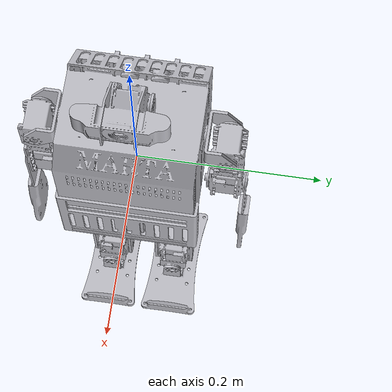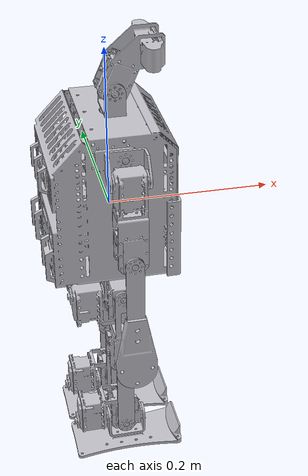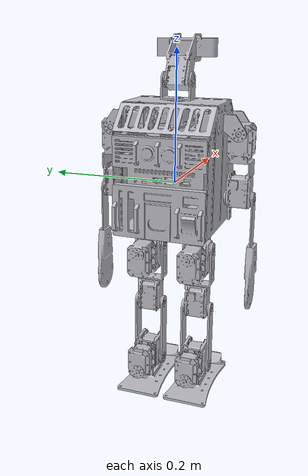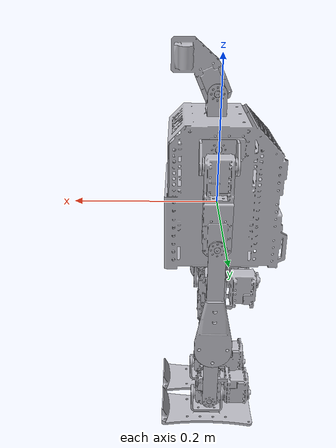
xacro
<?xml version="1.0" ?>
<robot name="marta" xmlns:xacro="http://www.ros.org/wiki/xacro">

<xacro:arg name="foot_mu"         default="1e10"/>
<xacro:arg name="body_mu1"        default="500"/>
<xacro:arg name="body_mu2"        default="400"/>
<xacro:arg name="contact_kp"      default="1000000.0"/>
<xacro:arg name="contact_kd"      default="10000.0"/>
<xacro:arg name="joint_effort"    default="1000.0"/>
<xacro:arg name="joint_damping"   default="0.0"/>
<xacro:arg name="joint_friction"  default="0.0"/>
<xacro:arg name="imu_gyro_noise"  default="0.0"/>
<xacro:arg name="imu_accel_noise" default="0.0"/>
<xacro:arg name="imu_gyro_bias"   default="0.0"/>
<xacro:arg name="foot_collision"  default="box"/>
<!-- Escala da massa do tronco (base_link); a inercia escala junto (mesma forma,
     densidade proporcional). 1.0 = modelo original. Experimento de massa. -->
<xacro:arg name="torso_mass_scale" default="1.0"/>
<xacro:arg name="implicit_damping" default="false"/>
<xacro:arg name="joint_velocity" default="0.01"/>
<xacro:property name="joint_velocity" value="$(arg joint_velocity)"/>

<xacro:property name="foot_mu"         value="$(arg foot_mu)"/>
<xacro:property name="body_mu1"        value="$(arg body_mu1)"/>
<xacro:property name="body_mu2"        value="$(arg body_mu2)"/>
<xacro:property name="contact_kp"      value="$(arg contact_kp)"/>
<xacro:property name="contact_kd"      value="$(arg contact_kd)"/>
<xacro:property name="joint_effort"    value="$(arg joint_effort)"/>
<xacro:property name="joint_damping"   value="$(arg joint_damping)"/>
<xacro:property name="joint_friction"  value="$(arg joint_friction)"/>
<xacro:property name="torso_mass_scale" value="$(arg torso_mass_scale)"/>

<xacro:include filename="$(find marta_description)/urdf/materials.xacro" />
<xacro:include filename="$(find marta_description)/urdf/marta.trans" />
<xacro:if value="$(arg implicit_damping)">
  <gazebo reference="head_pan_link"><implicitSpringDamper>true</implicitSpringDamper></gazebo>
  <gazebo reference="head_tilt_link"><implicitSpringDamper>true</implicitSpringDamper></gazebo>
  <gazebo reference="r_hip_yaw_link"><implicitSpringDamper>true</implicitSpringDamper></gazebo>
  <gazebo reference="l_hip_yaw_link"><implicitSpringDamper>true</implicitSpringDamper></gazebo>
  <gazebo reference="l_hip_roll_link"><implicitSpringDamper>true</implicitSpringDamper></gazebo>
  <gazebo reference="r_hip_roll_link"><implicitSpringDamper>true</implicitSpringDamper></gazebo>
  <gazebo reference="r_hip_pitch_link"><implicitSpringDamper>true</implicitSpringDamper></gazebo>
  <gazebo reference="l_hip_pitch_link"><implicitSpringDamper>true</implicitSpringDamper></gazebo>
  <gazebo reference="r_knee_link"><implicitSpringDamper>true</implicitSpringDamper></gazebo>
  <gazebo reference="l_knee_link"><implicitSpringDamper>true</implicitSpringDamper></gazebo>
  <gazebo reference="l_ank_pitch_link"><implicitSpringDamper>true</implicitSpringDamper></gazebo>
  <gazebo reference="r_ank_pitch_link"><implicitSpringDamper>true</implicitSpringDamper></gazebo>
  <gazebo reference="r_ank_roll_link"><implicitSpringDamper>true</implicitSpringDamper></gazebo>
  <gazebo reference="l_sho_pitch_link"><implicitSpringDamper>true</implicitSpringDamper></gazebo>
  <gazebo reference="r_sho_pitch_link"><implicitSpringDamper>true</implicitSpringDamper></gazebo>
  <gazebo reference="l_sho_roll_link"><implicitSpringDamper>true</implicitSpringDamper></gazebo>
  <gazebo reference="r_sho_roll_link"><implicitSpringDamper>true</implicitSpringDamper></gazebo>
  <gazebo reference="l_ank_roll_link"><implicitSpringDamper>true</implicitSpringDamper></gazebo>
  <gazebo reference="r_el_link"><implicitSpringDamper>true</implicitSpringDamper></gazebo>
  <gazebo reference="l_el_link"><implicitSpringDamper>true</implicitSpringDamper></gazebo>
</xacro:if>
<xacro:include filename="$(find marta_description)/urdf/marta.gazebo" />
<xacro:include filename="$(find marta_description)/urdf/camera.xacro" />
<xacro:include filename="$(find marta_description)/urdf/IMU.xacro" />
<xacro:include filename="$(find marta_description)/urdf/marta_joints.xacro" />

<!-- Define o parâmetro "use_sim" -->
<xacro:property name="use_sim" value="true" />

<!-- Adiciona o imu_sensor e camera_sensor apenas se use_sim for true -->
<xacro:if value="${use_sim}">
  <xacro:imu_sensor parent="base_link" ns="marta"
                    origin="-5.76e-3 -53.277e-3 -48.948e-3 ${pi} 0 ${pi}"
                    gyro_noise="$(arg imu_gyro_noise)"
                    accel_noise="$(arg imu_accel_noise)"
                    gyro_bias="$(arg imu_gyro_bias)"/>
  <xacro:camera_sensor parent="head_1" camera_name="front_camera" ns="marta" origin="0.04060 -0.020864 0.051202 0 0 0"/>
</xacro:if>

<link name="base_link">
  <inertial>
    <origin xyz="5.4347537332971534e-05 -0.0007644260033313482 -0.006523313454687187" rpy="0 0 0"/>
    <mass value="${2.9663080742707644 * torso_mass_scale}"/>
    <inertia ixx="${0.011903 * torso_mass_scale}" iyy="${0.0138 * torso_mass_scale}" izz="${0.007909 * torso_mass_scale}" ixy="${-0.000103 * torso_mass_scale}" iyz="${-5e-06 * torso_mass_scale}" ixz="${-0.000518 * torso_mass_scale}"/>
  </inertial>
  <visual>
    <origin xyz="0 0 0" rpy="0 0 0"/>
    <geometry>
      <mesh filename="package://marta_description/meshes/base_link.stl" scale="0.001 0.001 0.001"/>
    </geometry>
    <material name="silver"/>
  </visual>
  <collision>
    <origin xyz="0 0 0" rpy="0 0 0"/>
    <geometry>
      <mesh filename="package://marta_description/meshes/base_link.stl" scale="0.001 0.001 0.001"/>
    </geometry>
  </collision>
</link>

<link name="neck_1">
  <inertial>
    <origin xyz="-2.0877493726607216e-07 3.7893876529736595e-07 0.011928878554294392" rpy="0 0 0"/>
    <mass value="0.007507007184292331"/>
    <inertia ixx="4e-06" iyy="1e-06" izz="3e-06" ixy="-0.0" iyz="-0.0" ixz="-0.0"/>
  </inertial>
  <visual>
    <origin xyz="-0.00676 0.000494 -0.124698" rpy="0 0 0"/>
    <geometry>
      <mesh filename="package://marta_description/meshes/neck_1.stl" scale="0.001 0.001 0.001"/>
    </geometry>
    <material name="silver"/>
  </visual>
  <collision>
    <origin xyz="-0.00676 0.000494 -0.124698" rpy="0 0 0"/>
    <geometry>
      <mesh filename="package://marta_description/meshes/neck_1.stl" scale="0.001 0.001 0.001"/>
    </geometry>
  </collision>
</link>

<link name="head_1">
  <inertial>
    <origin xyz="0.022314681391525898 -0.02073370699479041 0.026627384704522722" rpy="0 0 0"/>
    <mass value="0.16258125298377385"/>
    <inertia ixx="0.000125" iyy="0.000133" izz="0.000127" ixy="-0.0" iyz="-0.0" ixz="-5.5e-05"/>
  </inertial>
  <visual>
    <origin xyz="-0.00676 -0.020006 -0.152698" rpy="0 0 0"/>
    <geometry>
      <mesh filename="package://marta_description/meshes/head_1.stl" scale="0.001 0.001 0.001"/>
    </geometry>
    <material name="silver"/>
  </visual>
  <collision>
    <origin xyz="-0.00676 -0.020006 -0.152698" rpy="0 0 0"/>
    <geometry>
      <mesh filename="package://marta_description/meshes/head_1.stl" scale="0.001 0.001 0.001"/>
    </geometry>
  </collision>
</link>

<link name="r_hip_1">
  <inertial>
    <origin xyz="4.496718738833741e-07 3.7898272031711144e-07 -0.012938477259913969" rpy="0 0 0"/>
    <mass value="0.01873031428199979"/>
    <inertia ixx="4e-06" iyy="1e-05" izz="8e-06" ixy="0.0" iyz="-0.0" ixz="-0.0"/>
  </inertial>
  <visual>
    <origin xyz="-0.006749 0.039994 0.071802" rpy="0 0 0"/>
    <geometry>
      <mesh filename="package://marta_description/meshes/r_hip_1.stl" scale="0.001 0.001 0.001"/>
    </geometry>
    <material name="silver"/>
  </visual>
  <collision>
    <origin xyz="-0.006749 0.039994 0.071802" rpy="0 0 0"/>
    <geometry>
      <mesh filename="package://marta_description/meshes/r_hip_1.stl" scale="0.001 0.001 0.001"/>
    </geometry>
  </collision>
</link>

<link name="l_hip_1">
  <inertial>
    <origin xyz="4.49671817612414e-07 3.7898277812503656e-07 -0.012938477259914455" rpy="0 0 0"/>
    <mass value="0.01873031428199979"/>
    <inertia ixx="4e-06" iyy="1e-05" izz="8e-06" ixy="0.0" iyz="0.0" ixz="0.0"/>
  </inertial>
  <visual>
    <origin xyz="-0.006749 -0.040006 0.071802" rpy="0 0 0"/>
    <geometry>
      <mesh filename="package://marta_description/meshes/l_hip_1.stl" scale="0.001 0.001 0.001"/>
    </geometry>
    <material name="silver"/>
  </visual>
  <collision>
    <origin xyz="-0.006749 -0.040006 0.071802" rpy="0 0 0"/>
    <geometry>
      <mesh filename="package://marta_description/meshes/l_hip_1.stl" scale="0.001 0.001 0.001"/>
    </geometry>
  </collision>
</link>

<link name="l_waist_1">
  <inertial>
    <origin xyz="0.003217881889190843 -0.00037965351061265 -0.012642485684384322" rpy="0 0 0"/>
    <mass value="0.16487378237644235"/>
    <inertia ixx="2.6e-05" iyy="0.000112" izz="0.000104" ixy="0.0" iyz="-0.0" ixz="-4e-06"/>
  </inertial>
  <visual>
    <origin xyz="0.017701 -0.040006 0.102802" rpy="0 0 0"/>
    <geometry>
      <mesh filename="package://marta_description/meshes/l_waist_1.stl" scale="0.001 0.001 0.001"/>
    </geometry>
    <material name="silver"/>
  </visual>
  <collision>
    <origin xyz="0.017701 -0.040006 0.102802" rpy="0 0 0"/>
    <geometry>
      <mesh filename="package://marta_description/meshes/l_waist_1.stl" scale="0.001 0.001 0.001"/>
    </geometry>
  </collision>
</link>

<link name="r_waist_1">
  <inertial>
    <origin xyz="0.0029988946147530924 0.00014360062854707617 -0.012642485684004917" rpy="0 0 0"/>
    <mass value="0.16487378237608635"/>
    <inertia ixx="2.6e-05" iyy="0.00011" izz="0.000103" ixy="-1e-06" iyz="0.0" ixz="-4e-06"/>
  </inertial>
  <visual>
    <origin xyz="0.017701 0.039994 0.102802" rpy="0 0 0"/>
    <geometry>
      <mesh filename="package://marta_description/meshes/r_waist_1.stl" scale="0.001 0.001 0.001"/>
    </geometry>
    <material name="silver"/>
  </visual>
  <collision>
    <origin xyz="0.017701 0.039994 0.102802" rpy="0 0 0"/>
    <geometry>
      <mesh filename="package://marta_description/meshes/r_waist_1.stl" scale="0.001 0.001 0.001"/>
    </geometry>
  </collision>
</link>

<link name="r_thigh_1">
  <inertial>
    <origin xyz="0.00017192155994741592 0.02167403651120388 -0.07484221886234771" rpy="0 0 0"/>
    <mass value="0.10528495656286858"/>
    <inertia ixx="8.3e-05" iyy="7.2e-05" izz="1.8e-05" ixy="-0.0" iyz="0.0" ixz="0.0"/>
  </inertial>
  <visual>
    <origin xyz="-0.003599 0.060744 0.102802" rpy="0 0 0"/>
    <geometry>
      <mesh filename="package://marta_description/meshes/r_thigh_1.stl" scale="0.001 0.001 0.001"/>
    </geometry>
    <material name="silver"/>
  </visual>
  <collision>
    <origin xyz="-0.003599 0.060744 0.102802" rpy="0 0 0"/>
    <geometry>
      <mesh filename="package://marta_description/meshes/r_thigh_1.stl" scale="0.001 0.001 0.001"/>
    </geometry>
  </collision>
</link>

<link name="l_thigh_1">
  <inertial>
    <origin xyz="-0.0001710222162556417 -0.021673278545692613 -0.07484221886234874" rpy="0 0 0"/>
    <mass value="0.10528495656286858"/>
    <inertia ixx="8.3e-05" iyy="7.2e-05" izz="1.8e-05" ixy="-0.0" iyz="-0.0" ixz="-0.0"/>
  </inertial>
  <visual>
    <origin xyz="-0.003599 -0.060756 0.102802" rpy="0 0 0"/>
    <geometry>
      <mesh filename="package://marta_description/meshes/l_thigh_1.stl" scale="0.001 0.001 0.001"/>
    </geometry>
    <material name="silver"/>
  </visual>
  <collision>
    <origin xyz="-0.003599 -0.060756 0.102802" rpy="0 0 0"/>
    <geometry>
      <mesh filename="package://marta_description/meshes/l_thigh_1.stl" scale="0.001 0.001 0.001"/>
    </geometry>
  </collision>
</link>

<link name="r_shin_1">
  <inertial>
    <origin xyz="4.4967183843690195e-07 0.020750378982766465 -0.05000019845333212" rpy="0 0 0"/>
    <mass value="0.02070946991510972"/>
    <inertia ixx="3.2e-05" iyy="2.3e-05" izz="1.1e-05" ixy="0.0" iyz="0.0" ixz="-0.0"/>
  </inertial>
  <visual>
    <origin xyz="-0.003599 0.060244 0.203802" rpy="0 0 0"/>
    <geometry>
      <mesh filename="package://marta_description/meshes/r_shin_1.stl" scale="0.001 0.001 0.001"/>
    </geometry>
    <material name="silver"/>
  </visual>
  <collision>
    <origin xyz="-0.003599 0.060244 0.203802" rpy="0 0 0"/>
    <geometry>
      <mesh filename="package://marta_description/meshes/r_shin_1.stl" scale="0.001 0.001 0.001"/>
    </geometry>
  </collision>
</link>

<link name="l_shin_1">
  <inertial>
    <origin xyz="4.496718534426937e-07 -0.02074962101724443 -0.050000198453333006" rpy="0 0 0"/>
    <mass value="0.02070946991510972"/>
    <inertia ixx="3.2e-05" iyy="2.3e-05" izz="1.1e-05" ixy="0.0" iyz="0.0" ixz="0.0"/>
  </inertial>
  <visual>
    <origin xyz="-0.003599 -0.060256 0.203802" rpy="0 0 0"/>
    <geometry>
      <mesh filename="package://marta_description/meshes/l_shin_1.stl" scale="0.001 0.001 0.001"/>
    </geometry>
    <material name="silver"/>
  </visual>
  <collision>
    <origin xyz="-0.003599 -0.060256 0.203802" rpy="0 0 0"/>
    <geometry>
      <mesh filename="package://marta_description/meshes/l_shin_1.stl" scale="0.001 0.001 0.001"/>
    </geometry>
  </collision>
</link>

<link name="l_ankle_1">
  <inertial>
    <origin xyz="-0.018082118110802223 0.02113041147611956 0.01264208877767331" rpy="0 0 0"/>
    <mass value="0.16487378237644235"/>
    <inertia ixx="2.6e-05" iyy="0.000112" izz="0.000104" ixy="-0.0" iyz="-0.0" ixz="4e-06"/>
  </inertial>
  <visual>
    <origin xyz="-0.003599 -0.018756 0.303802" rpy="0 0 0"/>
    <geometry>
      <mesh filename="package://marta_description/meshes/l_ankle_1.stl" scale="0.001 0.001 0.001"/>
    </geometry>
    <material name="silver"/>
  </visual>
  <collision>
    <origin xyz="-0.003599 -0.018756 0.303802" rpy="0 0 0"/>
    <geometry>
      <mesh filename="package://marta_description/meshes/l_ankle_1.stl" scale="0.001 0.001 0.001"/>
    </geometry>
  </collision>
</link>

<link name="r_ankle_1">
  <inertial>
    <origin xyz="-0.018301105385253563 -0.02089284266302423 0.012642088777299165" rpy="0 0 0"/>
    <mass value="0.16487378237608635"/>
    <inertia ixx="2.6e-05" iyy="0.00011" izz="0.000103" ixy="1e-06" iyz="0.0" ixz="4e-06"/>
  </inertial>
  <visual>
    <origin xyz="-0.003599 0.018744 0.303802" rpy="0 0 0"/>
    <geometry>
      <mesh filename="package://marta_description/meshes/r_ankle_1.stl" scale="0.001 0.001 0.001"/>
    </geometry>
    <material name="silver"/>
  </visual>
  <collision>
    <origin xyz="-0.003599 0.018744 0.303802" rpy="0 0 0"/>
    <geometry>
      <mesh filename="package://marta_description/meshes/r_ankle_1.stl" scale="0.001 0.001 0.001"/>
    </geometry>
  </collision>
</link>

<link name="l_shoulder_1">
  <inertial>
    <origin xyz="4.496718419150225e-07 0.010312955894494533 -0.0033923795362138243" rpy="0 0 0"/>
    <mass value="0.06160861853585967"/>
    <inertia ixx="1.1e-05" iyy="2.9e-05" izz="2.9e-05" ixy="0.0" iyz="2e-06" ixz="0.0"/>
  </inertial>
  <visual>
    <origin xyz="-0.006749 -0.075756 -0.096678" rpy="0 0 0"/>
    <geometry>
      <mesh filename="package://marta_description/meshes/l_shoulder_1.stl" scale="0.001 0.001 0.001"/>
    </geometry>
    <material name="silver"/>
  </visual>
  <collision>
    <origin xyz="-0.006749 -0.075756 -0.096678" rpy="0 0 0"/>
    <geometry>
      <mesh filename="package://marta_description/meshes/l_shoulder_1.stl" scale="0.001 0.001 0.001"/>
    </geometry>
  </collision>
</link>

<link name="r_shoulder_1">
  <inertial>
    <origin xyz="4.496718407709724e-07 -0.010312197929004105 -0.003392379536217266" rpy="0 0 0"/>
    <mass value="0.06160861853585967"/>
    <inertia ixx="1.1e-05" iyy="2.9e-05" izz="2.9e-05" ixy="0.0" iyz="-2e-06" ixz="-0.0"/>
  </inertial>
  <visual>
    <origin xyz="-0.006749 0.075744 -0.096678" rpy="0 0 0"/>
    <geometry>
      <mesh filename="package://marta_description/meshes/r_shoulder_1.stl" scale="0.001 0.001 0.001"/>
    </geometry>
    <material name="silver"/>
  </visual>
  <collision>
    <origin xyz="-0.006749 0.075744 -0.096678" rpy="0 0 0"/>
    <geometry>
      <mesh filename="package://marta_description/meshes/r_shoulder_1.stl" scale="0.001 0.001 0.001"/>
    </geometry>
  </collision>
</link>

<link name="l_arm_1">
  <inertial>
    <origin xyz="0.020899117897452697 -0.000152601605755337 -0.049267253308045655" rpy="0 0 0"/>
    <mass value="0.17356538250917286"/>
    <inertia ixx="0.00023" iyy="0.000229" izz="2e-05" ixy="-0.0" iyz="-2e-06" ixz="-2e-06"/>
  </inertial>
  <visual>
    <origin xyz="0.014251 -0.098756 -0.082178" rpy="0 0 0"/>
    <geometry>
      <mesh filename="package://marta_description/meshes/l_arm_1.stl" scale="0.001 0.001 0.001"/>
    </geometry>
    <material name="silver"/>
  </visual>
  <collision>
    <origin xyz="0.014251 -0.098756 -0.082178" rpy="0 0 0"/>
    <geometry>
      <mesh filename="package://marta_description/meshes/l_arm_1.stl" scale="0.001 0.001 0.001"/>
    </geometry>
  </collision>
</link>

<link name="r_arm_1">
  <inertial>
    <origin xyz="-0.02089821855377002 0.00015335957124805455 -0.04926725330804953" rpy="0 0 0"/>
    <mass value="0.17356538250917286"/>
    <inertia ixx="0.00023" iyy="0.000229" izz="2e-05" ixy="-0.0" iyz="2e-06" ixz="2e-06"/>
  </inertial>
  <visual>
    <origin xyz="-0.027749 0.098744 -0.082178" rpy="0 0 0"/>
    <geometry>
      <mesh filename="package://marta_description/meshes/r_arm_1.stl" scale="0.001 0.001 0.001"/>
    </geometry>
    <material name="silver"/>
  </visual>
  <collision>
    <origin xyz="-0.027749 0.098744 -0.082178" rpy="0 0 0"/>
    <geometry>
      <mesh filename="package://marta_description/meshes/r_arm_1.stl" scale="0.001 0.001 0.001"/>
    </geometry>
  </collision>
</link>

<link name="r_hand_1">
  <inertial>
    <origin xyz="4.638366823631751e-07 -0.0016993531784608995 -0.09900753221895309" rpy="0 0 0"/>
    <mass value="0.044998963500059705"/>
    <inertia ixx="8.1e-05" iyy="8.6e-05" izz="5e-06" ixy="-0.0" iyz="-1e-06" ixz="0.0"/>
  </inertial>
  <visual>
    <origin xyz="-0.007009 0.119494 0.017422" rpy="0 0 0"/>
    <geometry>
      <mesh filename="package://marta_description/meshes/r_hand_1.stl" scale="0.001 0.001 0.001"/>
    </geometry>
    <material name="silver"/>
  </visual>
  <collision>
    <origin xyz="-0.007009 0.119494 0.017422" rpy="0 0 0"/>
    <geometry>
      <mesh filename="package://marta_description/meshes/r_hand_1.stl" scale="0.001 0.001 0.001"/>
    </geometry>
  </collision>
</link>

<link name="l_hand_1">
  <inertial>
    <origin xyz="4.3550700028725797e-07 0.0017001111439592792 -0.0990075322189484" rpy="0 0 0"/>
    <mass value="0.044998963500059705"/>
    <inertia ixx="8.1e-05" iyy="8.6e-05" izz="5e-06" ixy="-0.0" iyz="1e-06" ixz="-0.0"/>
  </inertial>
  <visual>
    <origin xyz="-0.006489 -0.119506 0.017422" rpy="0 0 0"/>
    <geometry>
      <mesh filename="package://marta_description/meshes/l_hand_1.stl" scale="0.001 0.001 0.001"/>
    </geometry>
    <material name="silver"/>
  </visual>
  <collision>
    <origin xyz="-0.006489 -0.119506 0.017422" rpy="0 0 0"/>
    <geometry>
      <mesh filename="package://marta_description/meshes/l_hand_1.stl" scale="0.001 0.001 0.001"/>
    </geometry>
  </collision>
</link>

<link name="l_feet_1">
  <inertial>
    <origin xyz="0.03170463685076108 3.7854833169481683e-07 -0.02917623775896855" rpy="0 0 0"/>
    <mass value="0.06770857635843897"/>
    <inertia ixx="2.2e-05" iyy="0.00011" izz="0.000119" ixy="0.0" iyz="0.0" ixz="-1e-06"/>
  </inertial>
  <visual>
    <origin xyz="0.017701 -0.039506 0.303802" rpy="0 0 0"/>
    <geometry>
      <mesh filename="package://marta_description/meshes/l_feet_1.stl" scale="0.001 0.001 0.001"/>
    </geometry>
    <material name="silver"/>
  </visual>
  <collision>
    <xacro:if value="${'$(arg foot_collision)' == 'box'}">
      <!-- Mesma caixa envolvente da sola do STL (bbox medido da malha). -->
      <origin xyz="0.02445 0 -0.013" rpy="0 0 0"/>
      <geometry>
        <box size="0.1399 0.070 0.048"/>
      </geometry>
    </xacro:if>
    <xacro:unless value="${'$(arg foot_collision)' == 'box'}">
      <origin xyz="0.017701 -0.039506 0.303802" rpy="0 0 0"/>
      <geometry>
        <mesh filename="package://marta_description/meshes/l_feet_1.stl" scale="0.001 0.001 0.001"/>
      </geometry>
    </xacro:unless>
    <surface>
      <contact>
          <ode>
            <kp>${contact_kp}</kp>
            <kd>${contact_kd}</kd>
          </ode>
        </contact>
    </surface>
  </collision>
</link>

<link name="r_feet_1">
  <inertial>
    <origin xyz="0.03170463685073746 3.7854834774447843e-07 -0.029176237758968993" rpy="0 0 0"/>
    <mass value="0.06770857635843897"/>
    <inertia ixx="2.2e-05" iyy="0.00011" izz="0.000119" ixy="0.0" iyz="0.0" ixz="-1e-06"/>
  </inertial>
  <visual>
    <origin xyz="0.017701 0.039494 0.303802" rpy="0 0 0"/>
    <geometry>
      <mesh filename="package://marta_description/meshes/r_feet_1.stl" scale="0.001 0.001 0.001"/>
    </geometry>
    <material name="silver"/>
  </visual>
  <collision>
    <xacro:if value="${'$(arg foot_collision)' == 'box'}">
      <!-- Mesma caixa envolvente da sola do STL (bbox medido da malha). -->
      <origin xyz="0.02445 0 -0.013" rpy="0 0 0"/>
      <geometry>
        <box size="0.1399 0.070 0.048"/>
      </geometry>
    </xacro:if>
    <xacro:unless value="${'$(arg foot_collision)' == 'box'}">
      <origin xyz="0.017701 0.039494 0.303802" rpy="0 0 0"/>
      <geometry>
        <mesh filename="package://marta_description/meshes/r_feet_1.stl" scale="0.001 0.001 0.001"/>
      </geometry>
    </xacro:unless>
    <surface>
      <contact>
          <ode>
            <kp>${contact_kp}</kp>
            <kd>${contact_kd}</kd>
          </ode>
        </contact>
    </surface>
  </collision>
</link>

<link name="imu_position">
  <inertial>
    <origin xyz="-5.76e-3 53.277e-3 48.948e-3" rpy="0 0 0" />
    <mass value="0.0" />
    <inertia ixx="0.0" iyy="0.0" izz="0.0" ixy="0.0" iyz="0.0" ixz="0.0" />
  </inertial>
</link>

<joint name="imu_joint" type="fixed">
  <parent link="base_link" />
  <child link="imu_position" />
  <origin xyz="-5.76e-3 53.277e-3 48.948e-3" rpy="0 0 0" />
</joint>

</robot>

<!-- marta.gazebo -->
<robot name="marta" xmlns:xacro="http://www.ros.org/wiki/xacro" >

<xacro:property name="body_color" value="Gazebo/Silver" />

<xacro:property name="Kp_pe" value="1e15" />
<xacro:property name="Kd_pe" value="1e13" />

<gazebo>
  <plugin name="control" filename="libgazebo_ros_control.so">
    <robotNamespace>/marta</robotNamespace>
  </plugin>
</gazebo>
<gazebo reference="base_link">
  <material>${body_color}</material>
  <mu1>${body_mu1}</mu1>
  <mu2>${body_mu2}</mu2>
  <selfCollide>false</selfCollide>
  <gravity>true</gravity>
</gazebo>

<gazebo reference="neck_1">
  <material>${body_color}</material>
  <mu1>${body_mu1}</mu1>
  <mu2>${body_mu2}</mu2>
  <selfCollide>false</selfCollide>
</gazebo>

<gazebo reference="head_1">
  <material>${body_color}</material>
  <mu1>${body_mu1}</mu1>
  <mu2>${body_mu2}</mu2>
  <selfCollide>false</selfCollide>
</gazebo>

<gazebo reference="r_hip_1">
  <material>${body_color}</material>
  <mu1>${body_mu1}</mu1>
  <mu2>${body_mu2}</mu2>
  <selfCollide>false</selfCollide>
</gazebo>

<gazebo reference="l_hip_1">
  <material>${body_color}</material>
  <mu1>${body_mu1}</mu1>
  <mu2>${body_mu2}</mu2>
  <selfCollide>false</selfCollide>
</gazebo>

<gazebo reference="l_waist_1">
  <material>${body_color}</material>
  <mu1>${body_mu1}</mu1>
  <mu2>${body_mu2}</mu2>
  <selfCollide>false</selfCollide>
</gazebo>

<gazebo reference="r_waist_1">
  <material>${body_color}</material>
  <mu1>${body_mu1}</mu1>
  <mu2>${body_mu2}</mu2>
  <selfCollide>false</selfCollide>
</gazebo>

<gazebo reference="r_tight_1">
  <material>${body_color}</material>
  <mu1>${body_mu1}</mu1>
  <mu2>${body_mu2}</mu2>
  <selfCollide>false</selfCollide>
</gazebo>

<gazebo reference="l_tight_1">
  <material>${body_color}</material>
  <mu1>${body_mu1}</mu1>
  <mu2>${body_mu2}</mu2>
  <selfCollide>false</selfCollide>
</gazebo>

<gazebo reference="r_shin_1">
  <material>${body_color}</material>
  <mu1>${body_mu1}</mu1>
  <mu2>${body_mu2}</mu2>
  <selfCollide>false</selfCollide>
</gazebo>

<gazebo reference="l_shin_1">
  <material>${body_color}</material>
  <mu1>${body_mu1}</mu1>
  <mu2>${body_mu2}</mu2>
  <selfCollide>false</selfCollide>
</gazebo>

<gazebo reference="l_ankle_1">
  <material>${body_color}</material>
  <mu1>${body_mu1}</mu1>
  <mu2>${body_mu2}</mu2>
  <selfCollide>false</selfCollide>
</gazebo>

<gazebo reference="r_ankle_1">
  <material>${body_color}</material>
  <mu1>${body_mu1}</mu1>
  <mu2>${body_mu2}</mu2>
  <selfCollide>false</selfCollide>
</gazebo>

<gazebo reference="l_shoulder_1">
  <material>${body_color}</material>
  <mu1>${body_mu1}</mu1>
  <mu2>${body_mu2}</mu2>
  <selfCollide>false</selfCollide>
</gazebo>

<gazebo reference="r_shoulder_1">
  <material>${body_color}</material>
  <mu1>${body_mu1}</mu1>
  <mu2>${body_mu2}</mu2>
  <selfCollide>false</selfCollide>
</gazebo>

<gazebo reference="l_arm_1">
  <material>${body_color}</material>
  <mu1>${body_mu1}</mu1>
  <mu2>${body_mu2}</mu2>
  <selfCollide>false</selfCollide>
</gazebo>

<gazebo reference="r_arm_1">
  <material>${body_color}</material>
  <mu1>${body_mu1}</mu1>
  <mu2>${body_mu2}</mu2>
  <selfCollide>false</selfCollide>
</gazebo>

<gazebo reference="l_feet_1">
  <material>${body_color}</material>
  <mu1>${foot_mu}</mu1>
  <mu2>${foot_mu}</mu2>
  <kp>${contact_kp}</kp>
  <kd>${contact_kd}</kd>
  <minDepth>0.003</minDepth>
  <maxContacts>10000</maxContacts>
  <max_vel>0.0</max_vel>
  <selfCollide>false</selfCollide>
</gazebo>

<gazebo reference="r_feet_1">
  <material>${body_color}</material>
  <mu1>${foot_mu}</mu1>
  <mu2>${foot_mu}</mu2>
  <kp>${contact_kp}</kp>
  <kd>${contact_kd}</kd>
  <minDepth>0.003</minDepth>
  <maxContacts>10000</maxContacts>
  <max_vel>0.0</max_vel>
  <selfCollide>false</selfCollide>
</gazebo>

<gazebo reference="r_hand_1">
  <material>${body_color}</material>
  <mu1>${body_mu1}</mu1>
  <mu2>${body_mu2}</mu2>
  <selfCollide>false</selfCollide>
</gazebo>

<gazebo reference="l_hand_1">
  <material>${body_color}</material>
  <mu1>${body_mu1}</mu1>
  <mu2>${body_mu2}</mu2>
  <selfCollide>false</selfCollide>
</gazebo>

</robot>

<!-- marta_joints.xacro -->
<robot name="marta_joints" xmlns:xacro="http://www.ros.org/wiki/xacro">

<!-- Parâmetros para ERP e CFM -->
<xacro:property name="default_erp" value="0"/>
<xacro:property name="default_cfm" value="0.0001"/>

<joint name="head_pan_link" type="revolute">
  <origin xyz="0.00676 -0.000494 0.124698" rpy="0 0 0"/>
  <parent link="base_link"/>
  <child link="neck_1"/>
  <axis xyz="-0.0 0.0 -1.0"/>
  <dynamics damping="${joint_damping}" friction="${joint_friction}"/>
  <limit lower="-3.14159" upper="3.14159" effort="${joint_effort}" velocity="${joint_velocity}"/>
</joint>

<joint name="head_tilt_link" type="revolute">
  <origin xyz="0.0 0.0205 0.028" rpy="0 0 0"/>
  <parent link="neck_1"/>
  <child link="head_1"/>
  <axis xyz="-0.0 -1.0 -0.0"/>
  <dynamics damping="${joint_damping}" friction="${joint_friction}"/>
  <limit lower="-3.14159" upper="3.14159" effort="${joint_effort}" velocity="${joint_velocity}"/>
</joint>

<joint name="r_hip_yaw_link" type="revolute">
  <origin xyz="0.006749 -0.039994 -0.071802" rpy="0 0 0"/>
  <parent link="base_link"/>
  <child link="r_hip_1"/>
  <axis xyz="-0.0 0.0 -1.0"/>
  <dynamics damping="${joint_damping}" friction="${joint_friction}"/>
  <limit lower="-3.14159" upper="3.14159" effort="${joint_effort}" velocity="${joint_velocity}"/>
</joint>

<joint name="l_hip_yaw_link" type="revolute">
  <origin xyz="0.006749 0.040006 -0.071802" rpy="0 0 0"/>
  <parent link="base_link"/>
  <child link="l_hip_1"/>
  <axis xyz="0.0 0.0 -1.0"/>
  <dynamics damping="${joint_damping}" friction="${joint_friction}"/>
  <limit lower="-3.14159" upper="3.14159" effort="${joint_effort}" velocity="${joint_velocity}"/>
</joint>

<joint name="l_hip_roll_link" type="revolute">
  <origin xyz="-0.02445 0.0 -0.031" rpy="0 0 0"/>
  <parent link="l_hip_1"/>
  <child link="l_waist_1"/>
  <axis xyz="1.0 -0.0 0.0"/>
  <dynamics damping="${joint_damping}" friction="${joint_friction}"/>
  <limit lower="-3.14159" upper="3.14159" effort="${joint_effort}" velocity="${joint_velocity}"/>
</joint>

<joint name="r_hip_roll_link" type="revolute">
  <origin xyz="-0.02445 0.0 -0.031" rpy="0 0 0"/>
  <parent link="r_hip_1"/>
  <child link="r_waist_1"/>
  <axis xyz="1.0 0.0 -0.0"/>
  <dynamics damping="${joint_damping}" friction="${joint_friction}"/>
  <limit lower="-3.14159" upper="3.14159" effort="${joint_effort}" velocity="${joint_velocity}"/>
</joint>

<joint name="r_hip_pitch_link" type="revolute">
  <origin xyz="0.0213 -0.02075 0.0" rpy="0 0 0"/>
  <parent link="r_waist_1"/>
  <child link="r_thigh_1"/>
  <axis xyz="0.0 1.0 -0.0"/>
  <dynamics damping="${joint_damping}" friction="${joint_friction}"/>
  <limit lower="-3.14159" upper="3.14159" effort="${joint_effort}" velocity="${joint_velocity}"/>
</joint>

<joint name="l_hip_pitch_link" type="revolute">
  <origin xyz="0.0213 0.02075 0.0" rpy="0 0 0"/>
  <parent link="l_waist_1"/>
  <child link="l_thigh_1"/>
  <axis xyz="0.0 1.0 0.0"/>
  <dynamics damping="${joint_damping}" friction="${joint_friction}"/>
  <limit lower="-3.14159" upper="3.14159" effort="${joint_effort}" velocity="${joint_velocity}"/>
</joint>

<joint name="r_knee_link" type="revolute">
  <origin xyz="0.0 0.0005 -0.101" rpy="0 0 0"/>
  <parent link="r_thigh_1"/>
  <child link="r_shin_1"/>
  <axis xyz="-0.0 1.0 -0.0"/>
  <dynamics damping="${joint_damping}" friction="${joint_friction}"/>
  <limit lower="-3.14159" upper="3.14159" effort="${joint_effort}" velocity="${joint_velocity}"/>
</joint>

<joint name="l_knee_link" type="revolute">
  <origin xyz="0.0 -0.0005 -0.101" rpy="0 0 0"/>
  <parent link="l_thigh_1"/>
  <child link="l_shin_1"/>
  <axis xyz="0.0 1.0 0.0"/>
  <dynamics damping="${joint_damping}" friction="${joint_friction}"/>
  <limit lower="-3.14159" upper="3.14159" effort="${joint_effort}" velocity="${joint_velocity}"/>
</joint>

<joint name="l_ank_pitch_link" type="revolute">
  <origin xyz="0.0 -0.0415 -0.1" rpy="0 0 0"/>
  <parent link="l_shin_1"/>
  <child link="l_ankle_1"/>
  <axis xyz="-0.0 1.0 -0.0"/>
  <dynamics damping="${joint_damping}" friction="${joint_friction}"/>
  <limit lower="-3.14159" upper="3.14159" effort="${joint_effort}" velocity="${joint_velocity}"/>
</joint>

<joint name="r_ank_pitch_link" type="revolute">
  <origin xyz="0.0 0.0415 -0.1" rpy="0 0 0"/>
  <parent link="r_shin_1"/>
  <child link="r_ankle_1"/>
  <axis xyz="-0.0 1.0 0.0"/>
  <dynamics damping="${joint_damping}" friction="${joint_friction}"/>
  <limit lower="-3.14159" upper="3.14159" effort="${joint_effort}" velocity="${joint_velocity}"/>
</joint>

<joint name="r_ank_roll_link" type="revolute">
  <origin xyz="-0.0213 -0.02075 0.0" rpy="0 0 0"/>
  <parent link="r_ankle_1"/>
  <child link="r_feet_1"/>
  <axis xyz="1.0 0.0 -0.0"/>
  <dynamics damping="${joint_damping}" friction="${joint_friction}"/>
  <limit lower="-3.14159" upper="3.14159" effort="${joint_effort}" velocity="${joint_velocity}"/>
</joint>

<joint name="l_sho_pitch_link" type="revolute">
  <origin xyz="0.006749 0.075756 0.096678" rpy="0 0 0"/>
  <parent link="base_link"/>
  <child link="l_shoulder_1"/>
  <axis xyz="0.0 1.0 0.0"/>
  <dynamics damping="${joint_damping}" friction="${joint_friction}"/>
  <limit lower="-3.14159" upper="3.14159" effort="${joint_effort}" velocity="${joint_velocity}"/>
</joint>

<joint name="r_sho_pitch_link" type="revolute">
  <origin xyz="0.006749 -0.075744 0.096678" rpy="0 0 0"/>
  <parent link="base_link"/>
  <child link="r_shoulder_1"/>
  <axis xyz="-0.0 1.0 -0.0"/>
  <dynamics damping="${joint_damping}" friction="${joint_friction}"/>
  <limit lower="-3.14159" upper="3.14159" effort="${joint_effort}" velocity="${joint_velocity}"/>
</joint>

<joint name="l_sho_roll_link" type="revolute">
  <origin xyz="-0.021 0.023 -0.0145" rpy="0 0 0"/>
  <parent link="l_shoulder_1"/>
  <child link="l_arm_1"/>
  <axis xyz="-1.0 -0.0 -0.0"/>
  <dynamics damping="${joint_damping}" friction="${joint_friction}"/>
  <limit lower="-3.14159" upper="3.14159" effort="${joint_effort}" velocity="${joint_velocity}"/>
</joint>

<joint name="r_sho_roll_link" type="revolute">
  <origin xyz="0.021 -0.023 -0.0145" rpy="0 0 0"/>
  <parent link="r_shoulder_1"/>
  <child link="r_arm_1"/>
  <axis xyz="-1.0 0.0 -0.0"/>
  <dynamics damping="${joint_damping}" friction="${joint_friction}"/>
  <limit lower="-3.14159" upper="3.14159" effort="${joint_effort}" velocity="${joint_velocity}"/>
</joint>

<joint name="l_ank_roll_link" type="revolute">
  <origin xyz="-0.0213 0.02075 0.0" rpy="0 0 0"/>
  <parent link="l_ankle_1"/>
  <child link="l_feet_1"/>
  <axis xyz="1.0 -0.0 0.0"/>
  <dynamics damping="${joint_damping}" friction="${joint_friction}"/>
  <limit lower="-3.14159" upper="3.14159" effort="${joint_effort}" velocity="${joint_velocity}"/>
</joint>

<joint name="r_el_link" type="revolute">
  <origin xyz="-0.02074 -0.02075 -0.0996" rpy="0 0 0"/>
  <parent link="r_arm_1"/>
  <child link="r_hand_1"/>
  <axis xyz="0.0 1.0 -0.0"/>
  <dynamics damping="${joint_damping}" friction="${joint_friction}"/>
  <limit lower="-3.14159" upper="3.14159" effort="${joint_effort}" velocity="${joint_velocity}"/>
</joint>

<joint name="l_el_link" type="revolute">
  <origin xyz="0.02074 0.02075 -0.0996" rpy="0 0 0"/>
  <parent link="l_arm_1"/>
  <child link="l_hand_1"/>
  <axis xyz="-0.0 1.0 0.0"/>
  <dynamics damping="${joint_damping}" friction="${joint_friction}"/>
  <limit lower="-3.14159" upper="3.14159" effort="${joint_effort}" velocity="${joint_velocity}"/>
</joint>

</robot>
